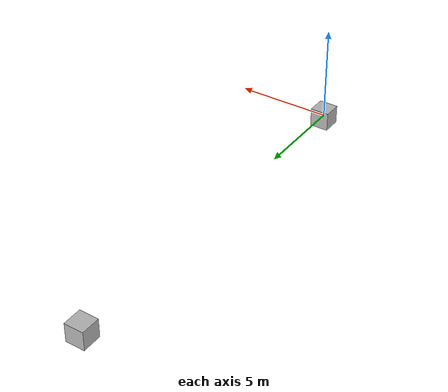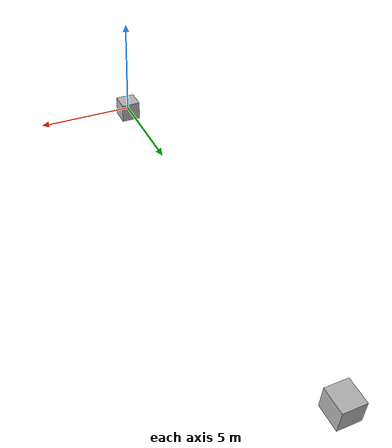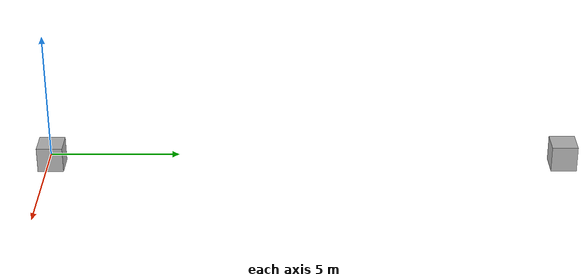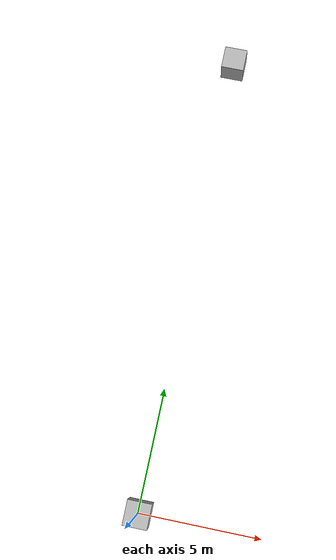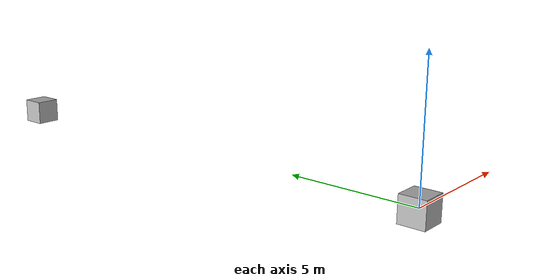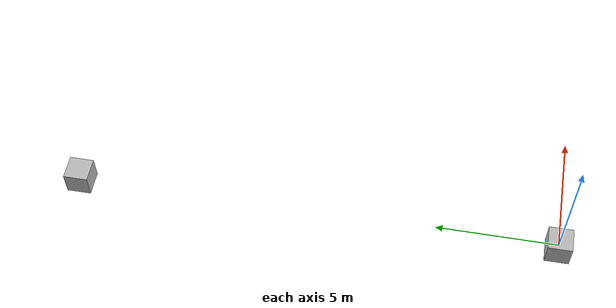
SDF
<?xml version="1.0" ?>
<!--
  Development of this module has been funded by the Monterey Bay Aquarium
  Research Institute (MBARI) and the David and Lucile Packard Foundation
-->
<sdf version="1.6">
  <world name="acoustic_Comms_test">
    <scene>
      <!-- For turquoise ambient to match particle effect -->
      <ambient>0.0 1.0 1.0</ambient>
      <!-- For default gray ambient -->
      <background>0.0 0.7 0.8</background>
    </scene>

    <physics name="1ms" type="dart">
      <max_step_size>0.001</max_step_size>
      <real_time_factor>1</real_time_factor>
    </physics>

    <plugin
      filename="ignition-gazebo-buoyancy-system"
      name="ignition::gazebo::systems::Buoyancy">
      <uniform_fluid_density>1025</uniform_fluid_density>
    </plugin>

    <plugin
      filename="ignition-gazebo-physics-system"
      name="ignition::gazebo::systems::Physics">
    </plugin>
    <plugin
      filename="ignition-gazebo-user-commands-system"
      name="ignition::gazebo::systems::UserCommands">
    </plugin>
    <plugin
      filename="ignition-gazebo-scene-broadcaster-system"
      name="ignition::gazebo::systems::SceneBroadcaster">
    </plugin>

    <model name="commsLink1">
      <pose>0 0 0 0 0 0</pose>
      <link name="base_link">
        <inertial>
          <mass>1000</mass>
          <inertia>
            <ixx>86.289</ixx>
            <iyy>86.289</iyy>
            <izz>86.289</izz>
          </inertia>
        </inertial>
        <visual name="base_link_vis">
          <geometry>
            <box>
              <size>1 1 1</size>
            </box>
          </geometry>
        </visual>
        <collision name="base_link_coll">
          <geometry>
            <box>
              <size>1 1 1</size>
            </box>
          </geometry>
        </collision>
      </link>
      <plugin
        filename="AcousticCommsPlugin"
        name="tethys::AcousticCommsPlugin">
        <address>1</address>
        <model_plugin_file>simpleacousticmodel</model_plugin_file>
        <model_name>tethys::SimpleAcousticModel</model_name>
        <link_name>base_link</link_name>
        <max_range>2500</max_range>
        <speed_of_sound>1500</speed_of_sound>
        <timestep>0.000001</timestep>
      </plugin>
      <plugin
        filename="RangeBearingPlugin"
        name="tethys::RangeBearingPlugin">
        <address>1</address>
        <processing_delay>0.3</processing_delay>
        <speed_of_sound>1500</speed_of_sound>
        <link_name>base_link</link_name>
        <namespace>box1</namespace>
      </plugin>
    </model>

   <model name="commsLink2">
      <pose>0 20 0 0 0 0</pose>
      <link name="base_link">
        <inertial>
          <mass>1000</mass>
          <inertia>
            <ixx>86.289</ixx>
            <iyy>86.289</iyy>
            <izz>86.289</izz>
          </inertia>
        </inertial>
        <visual name="base_link_vis">
          <geometry>
            <box>
              <size>1 1 1</size>
            </box>
          </geometry>
        </visual>
        <collision name="base_link_coll">
          <geometry>
            <box>
              <size>1 1 1</size>
            </box>
          </geometry>
        </collision>
      </link>
      <plugin
        filename="AcousticCommsPlugin"
        name="tethys::AcousticCommsPlugin">
        <address>2</address>
        <model_plugin_file>simpleacousticmodel</model_plugin_file>
        <model_name>tethys::SimpleAcousticModel</model_name>
        <link_name>base_link</link_name>
        <max_range>2500</max_range>
        <speed_of_sound>1500</speed_of_sound>
        <timestep>0.000001</timestep>
      </plugin>
      <plugin
        filename="RangeBearingPlugin"
        name="tethys::RangeBearingPlugin">
        <address>2</address>
        <processing_delay>0.3</processing_delay>
        <speed_of_sound>1500</speed_of_sound>
        <link_name>base_link</link_name>
        <namespace>box2</namespace>
      </plugin>
    </model>
  </world>
</sdf>
